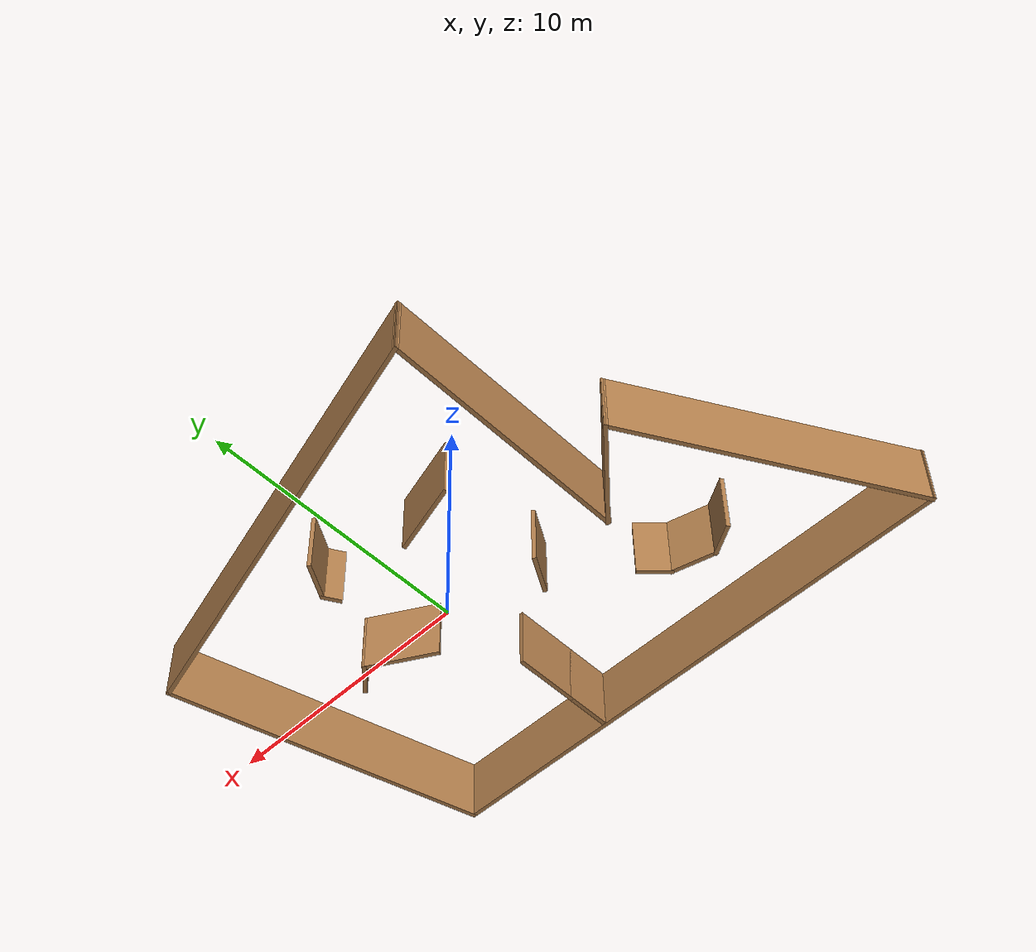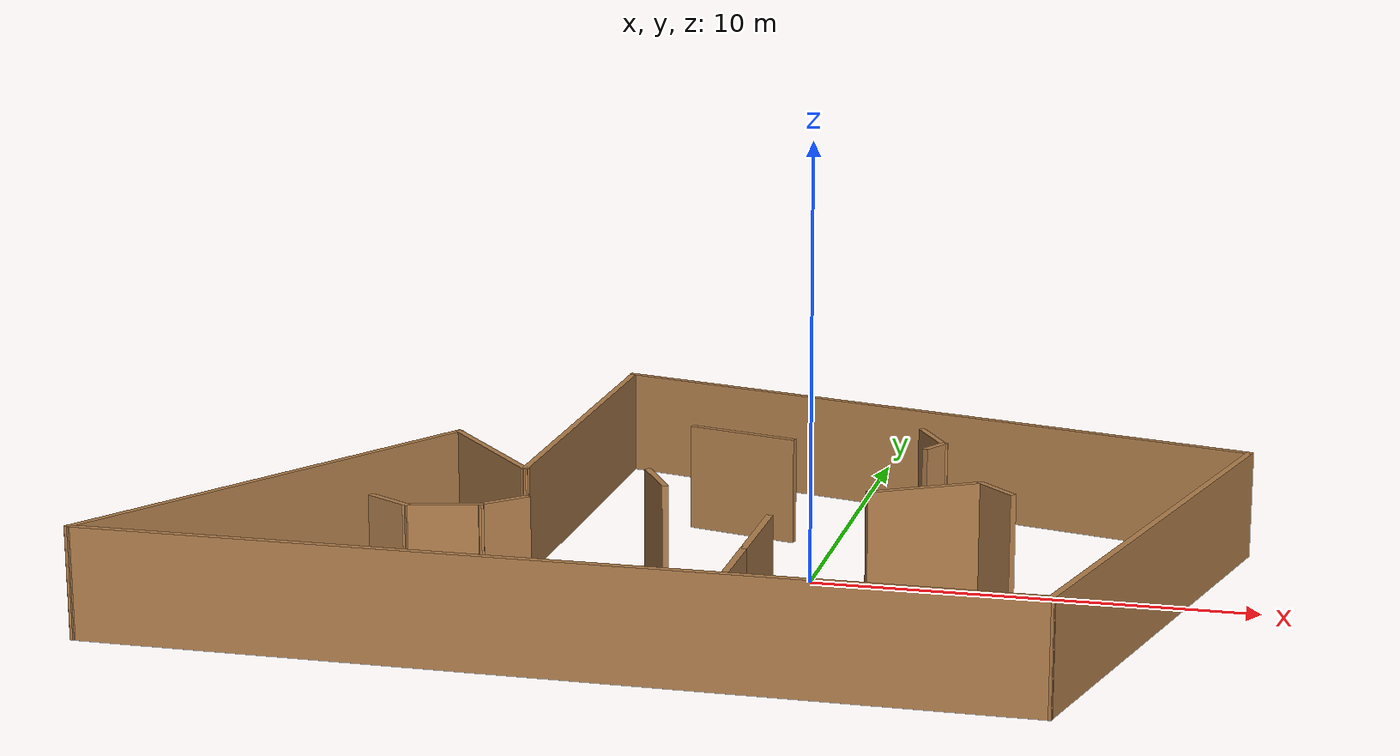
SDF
<?xml version='1.0'?>
<sdf version='1.7'>
  <model name='Untitled'>
    <pose>-2.46573 0.463528 0 0 -0 0</pose>
    <link name='Wall_10'>
      <collision name='Wall_10_Collision'>
        <geometry>
          <box>
            <size>3.93301 0.15 2.5</size>
          </box>
        </geometry>
        <pose>0 0 1.25 0 -0 0</pose>
      </collision>
      <visual name='Wall_10_Visual'>
        <pose>0 0 1.25 0 -0 0</pose>
        <geometry>
          <box>
            <size>3.93301 0.15 2.5</size>
          </box>
        </geometry>
        <material>
          <script>
            <uri>file://media/materials/scripts/gazebo.material</uri>
            <name>Gazebo/Wood</name>
          </script>
          <ambient>1 1 1 1</ambient>
        </material>
        <meta>
          <layer>0</layer>
        </meta>
      </visual>
      <pose>-5.17865 0.028486 0 0 -0 -0.843966</pose>
    </link>
    <link name='Wall_12'>
      <collision name='Wall_12_Collision'>
        <geometry>
          <box>
            <size>2.75 0.15 2.5</size>
          </box>
        </geometry>
        <pose>0 0 1.25 0 -0 0</pose>
      </collision>
      <visual name='Wall_12_Visual'>
        <pose>0 0 1.25 0 -0 0</pose>
        <geometry>
          <box>
            <size>2.75 0.15 2.5</size>
          </box>
        </geometry>
        <material>
          <script>
            <uri>file://media/materials/scripts/gazebo.material</uri>
            <name>Gazebo/Wood</name>
          </script>
          <ambient>1 1 1 1</ambient>
        </material>
        <meta>
          <layer>0</layer>
        </meta>
      </visual>
      <pose>0.137899 2.83328 0 0 -0 -0.261799</pose>
    </link>
    <link name='Wall_14'>
      <collision name='Wall_14_Collision'>
        <geometry>
          <box>
            <size>1.25 0.15 2.5</size>
          </box>
        </geometry>
        <pose>0 0 1.25 0 -0 0</pose>
      </collision>
      <visual name='Wall_14_Visual'>
        <pose>0 0 1.25 0 -0 0</pose>
        <geometry>
          <box>
            <size>1.25 0.15 2.5</size>
          </box>
        </geometry>
        <material>
          <script>
            <uri>file://media/materials/scripts/gazebo.material</uri>
            <name>Gazebo/Wood</name>
          </script>
          <ambient>1 1 1 1</ambient>
        </material>
        <meta>
          <layer>0</layer>
        </meta>
      </visual>
      <pose>-6.02208 -4.50863 0 0 -0 -0.523599</pose>
    </link>
    <link name='Wall_15'>
      <collision name='Wall_15_Collision'>
        <geometry>
          <box>
            <size>1.75 0.15 2.5</size>
          </box>
        </geometry>
        <pose>0 0 1.25 0 -0 0</pose>
      </collision>
      <visual name='Wall_15_Visual'>
        <pose>0 0 1.25 0 -0 0</pose>
        <geometry>
          <box>
            <size>1.75 0.15 2.5</size>
          </box>
        </geometry>
        <material>
          <script>
            <uri>file://media/materials/scripts/gazebo.material</uri>
            <name>Gazebo/Wood</name>
          </script>
          <ambient>1 1 1 1</ambient>
        </material>
        <meta>
          <layer>0</layer>
        </meta>
      </visual>
      <pose>-4.77303 -4.57657 0 0 -0 0.261799</pose>
    </link>
    <link name='Wall_16'>
      <collision name='Wall_16_Collision'>
        <geometry>
          <box>
            <size>1.25 0.15 2.5</size>
          </box>
        </geometry>
        <pose>0 0 1.25 0 -0 0</pose>
      </collision>
      <visual name='Wall_16_Visual'>
        <pose>0 0 1.25 0 -0 0</pose>
        <geometry>
          <box>
            <size>1.25 0.15 2.5</size>
          </box>
        </geometry>
        <material>
          <script>
            <uri>file://media/materials/scripts/gazebo.material</uri>
            <name>Gazebo/Wood</name>
          </script>
          <ambient>1 1 1 1</ambient>
        </material>
        <meta>
          <layer>0</layer>
        </meta>
      </visual>
      <pose>-3.61138 -3.98061 0 0 -0 0.785398</pose>
    </link>
    <link name='Wall_18'>
      <collision name='Wall_18_Collision'>
        <geometry>
          <box>
            <size>1.5 0.15 2.5</size>
          </box>
        </geometry>
        <pose>0 0 1.25 0 -0 0</pose>
      </collision>
      <visual name='Wall_18_Visual'>
        <pose>0 0 1.25 0 -0 0</pose>
        <geometry>
          <box>
            <size>1.5 0.15 2.5</size>
          </box>
        </geometry>
        <material>
          <script>
            <uri>file://media/materials/scripts/gazebo.material</uri>
            <name>Gazebo/Wood</name>
          </script>
          <ambient>1 1 1 1</ambient>
        </material>
        <meta>
          <layer>0</layer>
        </meta>
      </visual>
      <pose>-0.861216 -1.41993 0 0 -0 -1.0472</pose>
    </link>
    <link name='Wall_20'>
      <collision name='Wall_20_Collision'>
        <geometry>
          <box>
            <size>2.75 0.15 2.5</size>
          </box>
        </geometry>
        <pose>0 0 1.25 0 -0 0</pose>
      </collision>
      <visual name='Wall_20_Visual'>
        <pose>0 0 1.25 0 -0 0</pose>
        <geometry>
          <box>
            <size>2.75 0.15 2.5</size>
          </box>
        </geometry>
        <material>
          <script>
            <uri>file://media/materials/scripts/gazebo.material</uri>
            <name>Gazebo/Wood</name>
          </script>
          <ambient>1 1 1 1</ambient>
        </material>
        <meta>
          <layer>0</layer>
        </meta>
      </visual>
      <pose>5.10543 -0.832648 0 0 -0 0.523599</pose>
    </link>
    <link name='Wall_21'>
      <collision name='Wall_21_Collision'>
        <geometry>
          <box>
            <size>1.25 0.15 2.5</size>
          </box>
        </geometry>
        <pose>0 0 1.25 0 -0 0</pose>
      </collision>
      <visual name='Wall_21_Visual'>
        <pose>0 0 1.25 0 -0 0</pose>
        <geometry>
          <box>
            <size>1.25 0.15 2.5</size>
          </box>
        </geometry>
        <material>
          <script>
            <uri>file://media/materials/scripts/gazebo.material</uri>
            <name>Gazebo/Wood</name>
          </script>
          <ambient>1 1 1 1</ambient>
        </material>
        <meta>
          <layer>0</layer>
        </meta>
      </visual>
      <pose>6.62017 -0.571557 0 0 -0 -0.785398</pose>
    </link>
    <link name='Wall_23'>
      <collision name='Wall_23_Collision'>
        <geometry>
          <box>
            <size>1.75 0.15 2.5</size>
          </box>
        </geometry>
        <pose>0 0 1.25 0 -0 0</pose>
      </collision>
      <visual name='Wall_23_Visual'>
        <pose>0 0 1.25 0 -0 0</pose>
        <geometry>
          <box>
            <size>1.75 0.15 2.5</size>
          </box>
        </geometry>
        <material>
          <script>
            <uri>file://media/materials/scripts/gazebo.material</uri>
            <name>Gazebo/Wood</name>
          </script>
          <ambient>1 1 1 1</ambient>
        </material>
        <meta>
          <layer>0</layer>
        </meta>
      </visual>
      <pose>2.24001 -6.97549 0 0 -0 -1.5708</pose>
    </link>
    <link name='Wall_25'>
      <collision name='Wall_25_Collision'>
        <geometry>
          <box>
            <size>2.5 0.15 2.5</size>
          </box>
        </geometry>
        <pose>0 0 1.25 0 -0 0</pose>
      </collision>
      <visual name='Wall_25_Visual'>
        <pose>0 0 1.25 0 -0 0</pose>
        <geometry>
          <box>
            <size>2.5 0.15 2.5</size>
          </box>
        </geometry>
        <material>
          <script>
            <uri>file://media/materials/scripts/gazebo.material</uri>
            <name>Gazebo/Wood</name>
          </script>
          <ambient>1 1 1 1</ambient>
        </material>
        <meta>
          <layer>0</layer>
        </meta>
      </visual>
      <pose>2.24001 -5.00049 0 0 -0 1.5708</pose>
    </link>
    <link name='Wall_27'>
      <collision name='Wall_27_Collision'>
        <geometry>
          <box>
            <size>1.5 0.15 2.5</size>
          </box>
        </geometry>
        <pose>0 0 1.25 0 -0 0</pose>
      </collision>
      <visual name='Wall_27_Visual'>
        <pose>0 0 1.25 0 -0 0</pose>
        <geometry>
          <box>
            <size>1.5 0.15 2.5</size>
          </box>
        </geometry>
        <material>
          <script>
            <uri>file://media/materials/scripts/gazebo.material</uri>
            <name>Gazebo/Wood</name>
          </script>
          <ambient>1 1 1 1</ambient>
        </material>
        <meta>
          <layer>0</layer>
        </meta>
      </visual>
      <pose>4.55983 3.51565 0 0 -0 -1.0472</pose>
    </link>
    <link name='Wall_28'>
      <collision name='Wall_28_Collision'>
        <geometry>
          <box>
            <size>0.75 0.15 2.5</size>
          </box>
        </geometry>
        <pose>0 0 1.25 0 -0 0</pose>
      </collision>
      <visual name='Wall_28_Visual'>
        <pose>0 0 1.25 0 -0 0</pose>
        <geometry>
          <box>
            <size>0.75 0.15 2.5</size>
          </box>
        </geometry>
        <material>
          <script>
            <uri>file://media/materials/scripts/gazebo.material</uri>
            <name>Gazebo/Wood</name>
          </script>
          <ambient>1 1 1 1</ambient>
        </material>
        <meta>
          <layer>0</layer>
        </meta>
      </visual>
      <pose>4.74733 2.67128 0 0 -0 -2.0944</pose>
    </link>
    <link name='Wall_5'>
      <collision name='Wall_5_Collision'>
        <geometry>
          <box>
            <size>9.5 0.15 2.5</size>
          </box>
        </geometry>
        <pose>0 0 1.25 0 -0 0</pose>
      </collision>
      <visual name='Wall_5_Visual'>
        <pose>0 0 1.25 0 -0 0</pose>
        <geometry>
          <box>
            <size>9.5 0.15 2.5</size>
          </box>
        </geometry>
        <material>
          <script>
            <uri>file://media/materials/scripts/gazebo.material</uri>
            <name>Gazebo/Wood</name>
          </script>
          <ambient>1 1 1 1</ambient>
        </material>
        <meta>
          <layer>0</layer>
        </meta>
      </visual>
      <pose>-3.92173 3.28999 0 0 -0 1.5708</pose>
    </link>
    <link name='Wall_6'>
      <collision name='Wall_6_Collision'>
        <geometry>
          <box>
            <size>16.5 0.15 2.5</size>
          </box>
        </geometry>
        <pose>0 0 1.25 0 -0 0</pose>
      </collision>
      <visual name='Wall_6_Visual'>
        <pose>0 0 1.25 0 -0 0</pose>
        <geometry>
          <box>
            <size>16.5 0.15 2.5</size>
          </box>
        </geometry>
        <material>
          <script>
            <uri>file://media/materials/scripts/gazebo.material</uri>
            <name>Gazebo/Wood</name>
          </script>
          <ambient>1 1 1 1</ambient>
        </material>
        <meta>
          <layer>0</layer>
        </meta>
      </visual>
      <pose>3.97471 5.84915 0 0 -0 -0.261799</pose>
    </link>
    <link name='Wall_7'>
      <collision name='Wall_7_Collision'>
        <geometry>
          <box>
            <size>12.25 0.15 2.5</size>
          </box>
        </geometry>
        <pose>0 0 1.25 0 -0 0</pose>
      </collision>
      <visual name='Wall_7_Visual'>
        <pose>0 0 1.25 0 -0 0</pose>
        <geometry>
          <box>
            <size>12.25 0.15 2.5</size>
          </box>
        </geometry>
        <material>
          <script>
            <uri>file://media/materials/scripts/gazebo.material</uri>
            <name>Gazebo/Wood</name>
          </script>
          <ambient>1 1 1 1</ambient>
        </material>
        <meta>
          <layer>0</layer>
        </meta>
      </visual>
      <pose>10.3053 -2.11055 0 0 -0 -1.8326</pose>
    </link>
    <link name='Wall_8'>
      <collision name='Wall_8_Collision'>
        <geometry>
          <box>
            <size>20.75 0.15 2.5</size>
          </box>
        </geometry>
        <pose>0 0 1.25 0 -0 0</pose>
      </collision>
      <visual name='Wall_8_Visual'>
        <pose>0 0 1.25 0 -0 0</pose>
        <geometry>
          <box>
            <size>20.75 0.15 2.5</size>
          </box>
        </geometry>
        <material>
          <script>
            <uri>file://media/materials/scripts/gazebo.material</uri>
            <name>Gazebo/Wood</name>
          </script>
          <ambient>1 1 1 1</ambient>
        </material>
        <meta>
          <layer>0</layer>
        </meta>
      </visual>
      <pose>-1.56056 -7.9544 0 0 -0 3.14159</pose>
    </link>
    <link name='Wall_9'>
      <collision name='Wall_9_Collision'>
        <geometry>
          <box>
            <size>11 0.15 2.5</size>
          </box>
        </geometry>
        <pose>0 0 1.25 0 -0 0</pose>
      </collision>
      <visual name='Wall_9_Visual'>
        <pose>0 0 1.25 0 -0 0</pose>
        <geometry>
          <box>
            <size>11 0.15 2.5</size>
          </box>
        </geometry>
        <material>
          <script>
            <uri>file://media/materials/scripts/gazebo.material</uri>
            <name>Gazebo/Wood</name>
          </script>
          <ambient>1 1 1 1</ambient>
        </material>
        <meta>
          <layer>0</layer>
        </meta>
      </visual>
      <pose>-9.14806 -3.25621 0 0 -0 1.0472</pose>
    </link>
    <static>1</static>
  </model>
</sdf>
